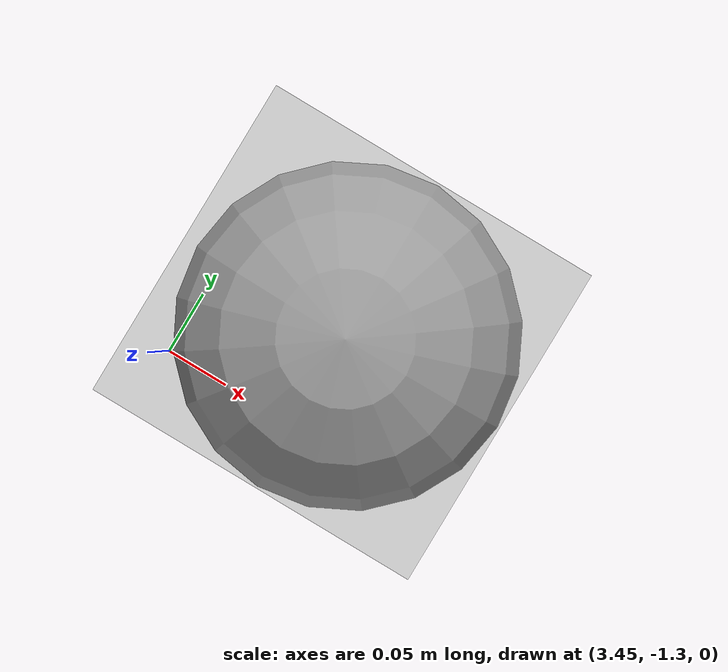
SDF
<sdf version="1.7">
 <world name="default">
  <light name="sun" type="directional">
   <pose>0 0 10 0 -0 0</pose>
   <diffuse>0.8 0.8 0.8 1</diffuse>
   <specular>0.2 0.2 0.2 1</specular>
   <attenuation>
    <range>1000</range>
    <constant>0.9</constant>
    <linear>0.01</linear>
    <quadratic>0.001</quadratic>
   </attenuation>
   <direction>-0.5 0.1 -0.9</direction>
   <spot><inner_angle>0</inner_angle><outer_angle>0</outer_angle><falloff>0</falloff></spot>
  </light>
  <model name="ground_plane">
   <static>1</static>
   <link name="link">
    <collision name="collision">
     <geometry><plane><normal>0 0 1</normal><size>100 100</size></plane></geometry>
     <surface>
      <contact><collide_bitmask>65535</collide_bitmask></contact>
      <friction><ode><mu>100</mu><mu2>50</mu2></ode></friction>
     </surface>
    </collision>
    <visual name="visual">
     <cast_shadows>0</cast_shadows>
     <geometry><plane><normal>0 0 1</normal><size>100 100</size></plane></geometry>
     <material>
      <script><uri>file://media/materials/scripts/gazebo.material</uri><name>Gazebo/Grey</name></script>
     </material>
    </visual>
   </link>
  </model>
  <gravity>0 0 -9.8</gravity>
  <magnetic_field>6e-06 2.3e-05 -4.2e-05</magnetic_field>
  <atmosphere type="adiabatic"/>
  <physics name="default_physics" default="0" type="ode">
   <max_step_size>0.001</max_step_size>
   <real_time_factor>1</real_time_factor>
   <real_time_update_rate>1000</real_time_update_rate>
  </physics>
  <scene><ambient>0.4 0.4 0.4 1</ambient><background>0.7 0.7 0.7 1</background><shadows>1</shadows></scene>
  <audio><device>default</device></audio>
  <spherical_coordinates>
   <surface_model>EARTH_WGS84</surface_model>
   <latitude_deg>0</latitude_deg>
   <longitude_deg>0</longitude_deg>
   <elevation>0</elevation>
   <heading_deg>0</heading_deg>
  </spherical_coordinates>
  <model name="my_ball">
   <link name="link_0">
    <inertial>
     <mass>1</mass>
     <inertia><ixx>0.1</ixx><ixy>0</ixy><ixz>0</ixz><iyy>0.1</iyy><iyz>0</iyz><izz>0.1</izz></inertia>
    </inertial>
    <visual name="visual">
     <geometry><sphere><radius>0.1</radius></sphere></geometry>
     <material>
      <lighting>1</lighting>
      <script><uri>file://media/materials/scripts/gazebo.material</uri><name>Gazebo/Grey</name></script>
      <shader type="vertex"><normal_map>__default__</normal_map></shader>
      <ambient>1 1 1 1</ambient>
      <diffuse>1 1 1 1</diffuse>
      <specular>1 1 1 1</specular>
      <emissive>1 1 1 1</emissive>
     </material>
    </visual>
    <collision name="collision">
     <geometry><sphere><radius>0.1</radius></sphere></geometry>
     <surface>
      <friction>
       <ode><mu>1</mu><mu2>1</mu2><fdir1>0 0 0</fdir1><slip1>0</slip1><slip2>0</slip2></ode>
       <torsional>
        <coefficient>1</coefficient>
        <patch_radius>0</patch_radius>
        <surface_radius>0</surface_radius>
        <use_patch_radius>1</use_patch_radius>
        <ode><slip>0</slip></ode>
       </torsional>
      </friction>
      <bounce><restitution_coefficient>0</restitution_coefficient><threshold>1e+06</threshold></bounce>
      <contact>
       <collide_without_contact>0</collide_without_contact>
       <collide_without_contact_bitmask>1</collide_without_contact_bitmask>
       <collide_bitmask>1</collide_bitmask>
       <ode>
        <soft_cfm>0</soft_cfm>
        <soft_erp>0.2</soft_erp>
        <kp>1e+13</kp>
        <kd>1</kd>
        <max_vel>0.01</max_vel>
        <min_depth>0</min_depth>
       </ode>
       <bullet>
        <split_impulse>1</split_impulse>
        <split_impulse_penetration_threshold>-0.01</split_impulse_penetration_threshold>
        <soft_cfm>0</soft_cfm>
        <soft_erp>0.2</soft_erp>
        <kp>1e+13</kp>
        <kd>1</kd>
       </bullet>
      </contact>
     </surface>
    </collision>
   </link>
   <static>0</static>
   <pose>3.55994 -1.22025 0.1 0.018695 -0 0</pose>
  </model>
  <model name="iscas_museum">
   <link name="link">
    <inertial><mass>15</mass></inertial>
    <collision name="collision">
     <pose>0 0 0 0 0 -1.57</pose>
     <geometry><mesh><uri>model://iscas_museum/meshes/ISCAS_museum.dae</uri></mesh></geometry>
    </collision>
    <visual name="visual">
     <pose>0 0 0 0 0 -1.57</pose>
     <geometry><mesh><uri>model://iscas_museum/meshes/ISCAS_museum.dae</uri></mesh></geometry>
    </visual>
   </link>
   <static>1</static>
  </model>
 </world>
</sdf>
